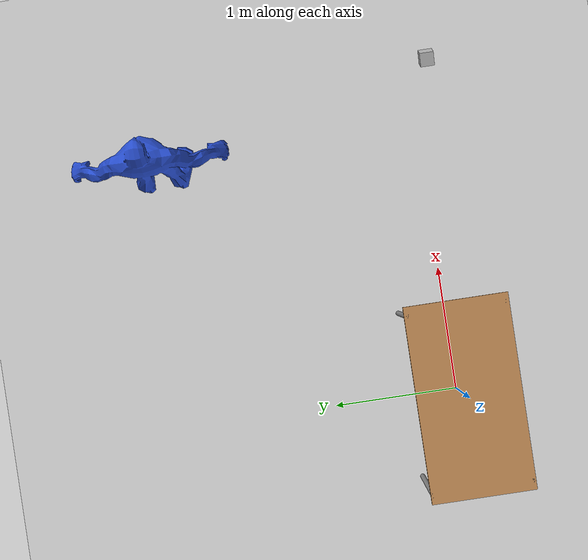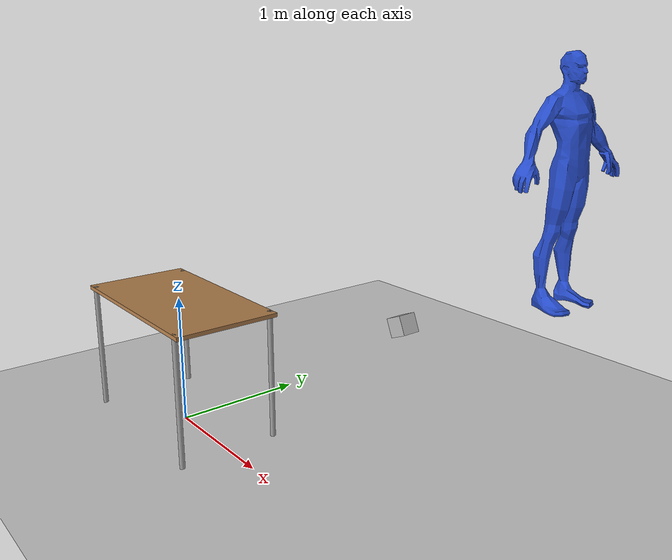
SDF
<sdf version='1.6'>
  <world name='default'>

    <light name='sun' type='directional'>
      <cast_shadows>1</cast_shadows>
      <pose frame=''>0 0 10 0 -0 0</pose>
      <diffuse>0.8 0.8 0.8 1</diffuse>
      <specular>0.2 0.2 0.2 1</specular>
      <attenuation>
        <range>1000</range>
        <constant>0.9</constant>
        <linear>0.01</linear>
        <quadratic>0.001</quadratic>
      </attenuation>
      <direction>-0.5 0.1 -0.9</direction>
    </light>

    <model name='ground_plane'>
      <static>1</static>
      <link name='link'>
        <collision name='collision'>
          <geometry>
            <plane>
              <normal>0 0 1</normal>
              <size>100 100</size>
            </plane>
          </geometry>
          <surface>
            <contact>
              <collide_bitmask>65535</collide_bitmask>
              <ode/>
            </contact>
            <friction>
              <ode>
                <mu>100</mu>
                <mu2>50</mu2>
              </ode>
              <torsional>
                <ode/>
              </torsional>
            </friction>
            <bounce/>
          </surface>
          <max_contacts>10</max_contacts>
        </collision>
        <visual name='visual'>
          <cast_shadows>0</cast_shadows>
          <geometry>
            <plane>
              <normal>0 0 1</normal>
              <size>100 100</size>
            </plane>
          </geometry>
          <material>
            <script>
              <uri>file://media/materials/scripts/gazebo.material</uri>
              <name>Gazebo/Grey</name>
            </script>
          </material>
        </visual>
        <self_collide>0</self_collide>
        <enable_wind>0</enable_wind>
        <kinematic>0</kinematic>
      </link>
    </model>

    <model name='camera'>
      <static>1</static>
      <pose frame=''>2.5 0 1.5 -0 0.4 3.14</pose>
      <link name='link'>
        <visual name='visual'>
          <geometry>
            <box>
              <size>0.1 0.1 0.1</size>
            </box>
          </geometry>
        </visual>
        <sensor name='my_camera' type='camera'>
          <camera name='__default__'>
            <save enabled="true">
              <path>/tmp/camera_save_tutorial</path>
            </save>
            <horizontal_fov>1.047</horizontal_fov>
            <image>
              <width>1920</width>
              <height>1080</height>
            </image>
            <clip>
              <near>0.1</near>
              <far>100</far>
            </clip>
          </camera>
          <always_on>1</always_on>
          <update_rate>30</update_rate>
        </sensor>
        <self_collide>0</self_collide>
        <enable_wind>0</enable_wind>
        <kinematic>0</kinematic>
      </link>
    </model>

    <gravity>0 0 -9.8</gravity>
    <magnetic_field>6e-06 2.3e-05 -4.2e-05</magnetic_field>
    <atmosphere type='adiabatic'/>
    <physics name='default_physics' default='0' type='ode'>
      <max_step_size>0.001</max_step_size>
      <real_time_factor>2</real_time_factor>
      <real_time_update_rate>2000</real_time_update_rate>
    </physics>
    <scene>
      <ambient>0.4 0.4 0.4 1</ambient>
      <background>0.7 0.7 0.7 1</background>
      <shadows>1</shadows>
    </scene>
    <audio>
      <device>default</device>
    </audio>
    <wind/>
    <spherical_coordinates>
      <surface_model>EARTH_WGS84</surface_model>
      <latitude_deg>0</latitude_deg>
      <longitude_deg>0</longitude_deg>
      <elevation>0</elevation>
      <heading_deg>0</heading_deg>
    </spherical_coordinates>
    <gui fullscreen='0'>
      <camera name='user_camera'>
        <pose frame=''>5.27134 -4.00834 4.67211 0 0.564737 2.53272</pose>
        <view_controller>orbit</view_controller>
        <projection_type>perspective</projection_type>
      </camera>
    </gui>

  <include>
    <uri>model://table</uri>
  </include>

  <include>
    <uri>model://human</uri>
    <pose>2 2 2 0 0 0</pose>
  </include>

  </world>
</sdf>

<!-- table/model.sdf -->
<sdf version="1.5">
  <model name="table">
    <static>true</static>
    <link name="link">
      <collision name="surface">
        <pose>0 0 0.985 0 0 0</pose>
        <geometry>
          <box>
            <size>1.5 0.8 0.03</size>
          </box>
        </geometry>
        <surface>
          <friction>
            <ode>
              <mu>0.6</mu>
              <mu2>0.6</mu2>
            </ode>
          </friction>
        </surface>
      </collision>
      <visual name="visual1">
        <pose>0 0 0.985 0 0 0</pose>
        <geometry>
          <box>
            <size>1.5 0.8 0.03</size>
          </box>
        </geometry>
        <material>
          <script>
            <uri>file://media/materials/scripts/gazebo.material</uri>
            <name>Gazebo/Wood</name>
          </script>
        </material>
      </visual>
      <collision name="front_left_leg">
        <pose>0.68 0.38 0.5 0 0 0</pose>
        <geometry>
          <cylinder>
            <radius>0.02</radius>
            <length>1.0</length>
          </cylinder>
        </geometry>
      </collision>
      <visual name="front_left_leg">
        <pose>0.68 0.38 0.5 0 0 0</pose>
        <geometry>
          <cylinder>
            <radius>0.02</radius>
            <length>1.0</length>
          </cylinder>
        </geometry>
        <material>
          <script>
            <uri>file://media/materials/scripts/gazebo.material</uri>
            <name>Gazebo/Grey</name>
          </script>
        </material>
      </visual>
      <collision name="front_right_leg">
        <pose>0.68 -0.38 0.5 0 0 0</pose>
        <geometry>
          <cylinder>
            <radius>0.02</radius>
            <length>1.0</length>
          </cylinder>
        </geometry>
      </collision>
      <visual name="front_right_leg">
        <pose>0.68 -0.38 0.5 0 0 0</pose>
        <geometry>
          <cylinder>
            <radius>0.02</radius>
            <length>1.0</length>
          </cylinder>
        </geometry>
        <material>
          <script>
            <uri>file://media/materials/scripts/gazebo.material</uri>
            <name>Gazebo/Grey</name>
          </script>
        </material>
      </visual>
      <collision name="back_right_leg">
        <pose>-0.68 -0.38 0.5 0 0 0</pose>
        <geometry>
          <cylinder>
            <radius>0.02</radius>
            <length>1.0</length>
          </cylinder>
        </geometry>
      </collision>
      <visual name="back_right_leg">
        <pose>-0.68 -0.38 0.5 0 0 0</pose>
        <geometry>
          <cylinder>
            <radius>0.02</radius>
            <length>1.0</length>
          </cylinder>
        </geometry>
        <material>
          <script>
            <uri>file://media/materials/scripts/gazebo.material</uri>
            <name>Gazebo/Grey</name>
          </script>
        </material>
      </visual>
      <collision name="back_left_leg">
        <pose>-0.68 0.38 0.5 0 0 0</pose>
        <geometry>
          <cylinder>
            <radius>0.02</radius>
            <length>1.0</length>
          </cylinder>
        </geometry>
      </collision>
      <visual name="back_left_leg">
        <pose>-0.68 0.38 0.5 0 0 0</pose>
        <geometry>
          <cylinder>
            <radius>0.02</radius>
            <length>1.0</length>
          </cylinder>
        </geometry>
        <material>
          <script>
            <uri>file://media/materials/scripts/gazebo.material</uri>
            <name>Gazebo/Grey</name>
          </script>
        </material>
      </visual>
    </link>
  </model>
</sdf>

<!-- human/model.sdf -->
<sdf version="1.6">
  <model name="human">
    <pose>0 0 0.96 0 0 0</pose>
    <static>true</static>
    <link name="link">
      <collision name="collision">
        <pose>0 0 0 0 0 1.57079632679</pose>
        <geometry>
          <mesh>
            <uri>model://human/meshes/body.dae</uri>
          </mesh>
        </geometry>
      </collision>
      <visual name="visual">
        <pose>0 0 0 0 0 1.57079632679</pose>
        <geometry>
          <mesh>
            <uri>model://human/meshes/body.dae</uri>
          </mesh>
        </geometry>
        <material>
            <script>
              <name>Gazebo/Blue</name>
              <uri>file://media/materials/scripts/gazebo.material</uri>
            </script>
          </material>
      </visual>
    </link>
  </model>
</sdf>
